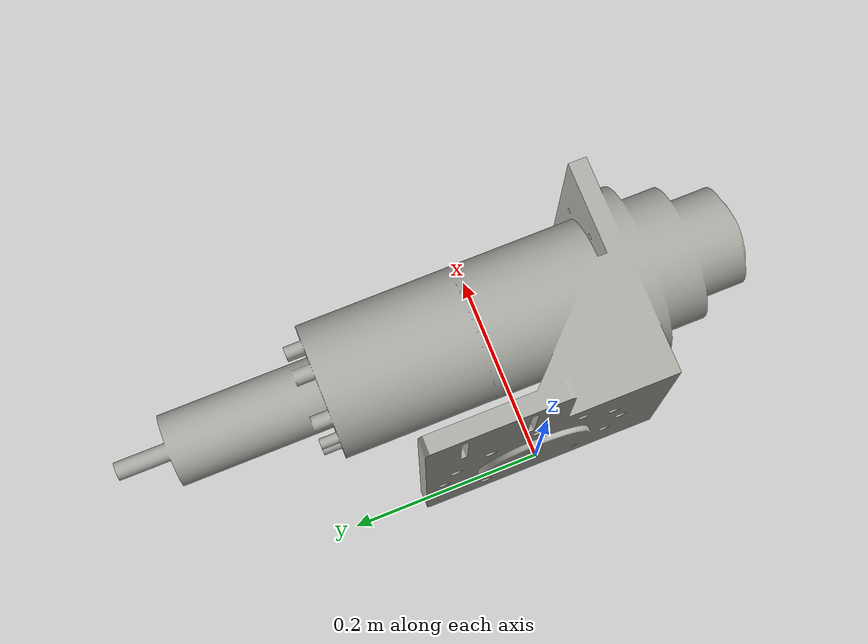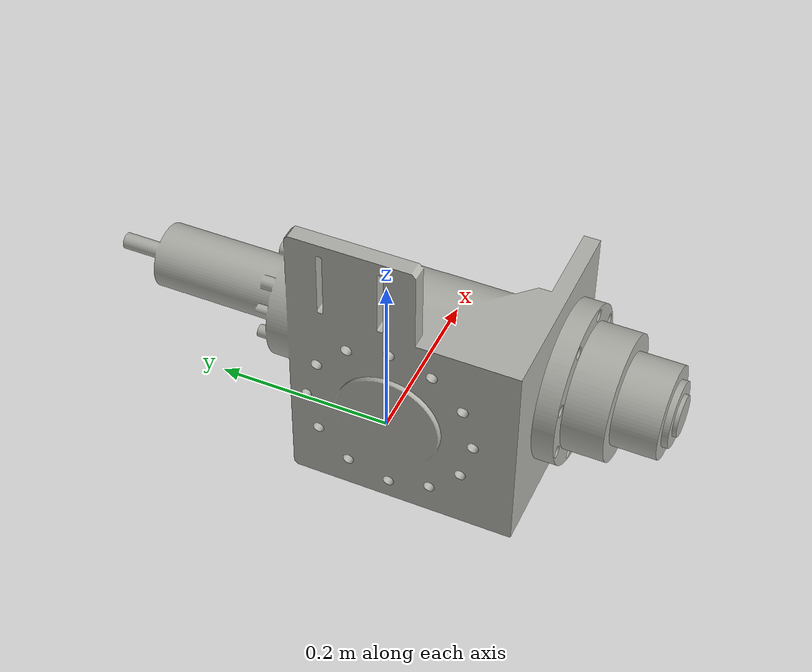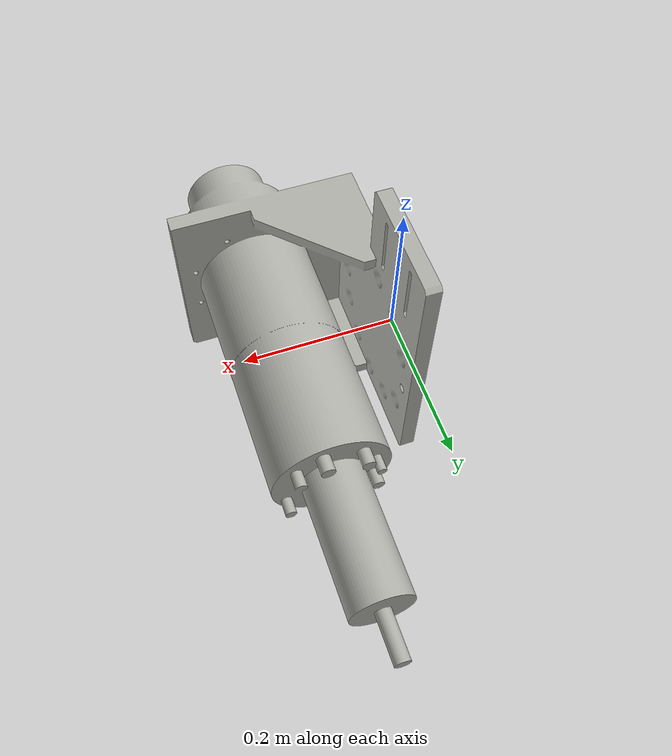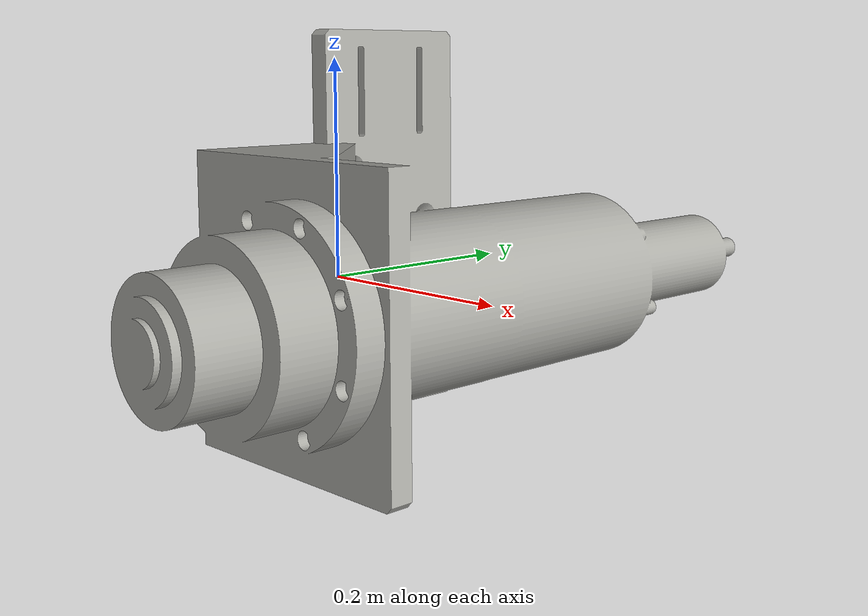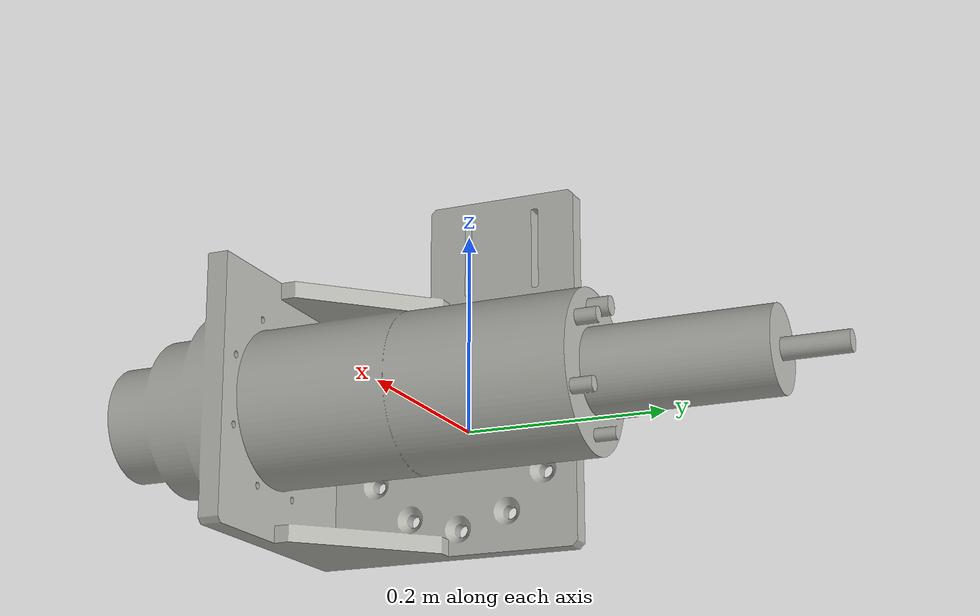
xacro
<?xml version="1.0" ?>
<robot name="machining_spindle" xmlns:xacro="http://ros.org/wiki/xacro">
  <link name="spindle_head_link">
    <visual>
      <geometry>
        <mesh filename="package://simtech_kuka_workcell/meshes/spindle/visual/spindle.stl" scale = "0.001 0.001 0.001"/>
      </geometry>
      <material name="dark_gray">
        <color rgba="${175/255} ${175/255} ${169/255} 1.0"/>
      </material>
    </visual>
    <collision>
      <geometry>
        <mesh filename="package://simtech_kuka_workcell/meshes/spindle/collision/spindle.stl" scale = "0.001 0.001 0.001"/>
      </geometry>
      <material name="yellow">
        <color rgba="0 1 1 1" />
      </material>
    </collision>
  </link>
</robot>
